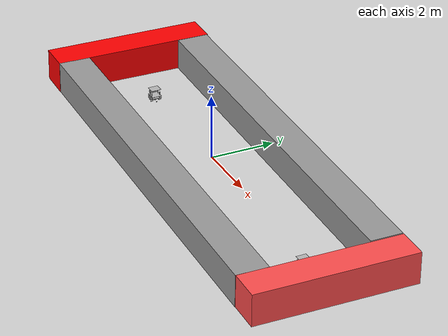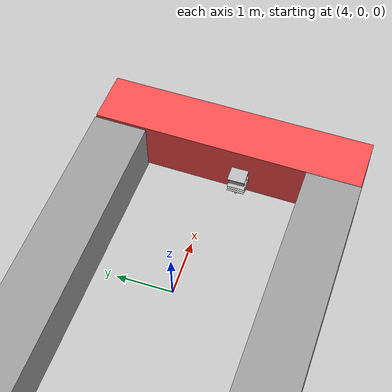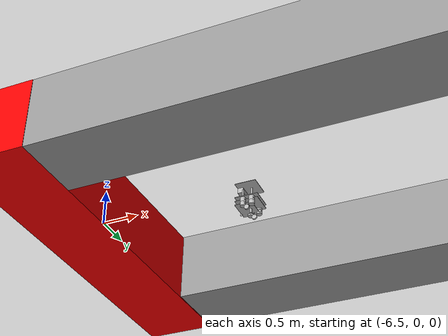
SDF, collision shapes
<?xml version='1.0'?>
<sdf version='1.6'>
  <model name='3302_final_map'>
    <link name='link_0'>
      <inertial>
        <mass>13.0236</mass>
        <inertia>
          <ixx>2.17059</ixx>
          <ixy>0</ixy>
          <ixz>0</ixz>
          <iyy>185.166</iyy>
          <iyz>0</iyz>
          <izz>185.166</izz>
        </inertia>
        <pose frame=''>0 0 0 0 -0 0</pose>
      </inertial>
      <pose frame=''>0.197611 -1.88933 0.105433 -0 0.01757 -0.026215</pose>
      <visual name='visual'>
        <pose frame=''>0 0 0 0 -0 0</pose>
        <geometry>
          <box>
            <size>13.0236 1 1</size>
          </box>
        </geometry>
        <material>
          <lighting>1</lighting>
          <script>
            <uri>file://media/materials/scripts/gazebo.material</uri>
            <name>Gazebo/Grey</name>
          </script>
        </material>
        <transparency>0</transparency>
        <cast_shadows>1</cast_shadows>
      </visual>
      <collision name='collision'>
        <laser_retro>0</laser_retro>
        <max_contacts>10</max_contacts>
        <pose frame=''>0 0 0 0 -0 0</pose>
        <geometry>
          <box>
            <size>13.0236 1 1</size>
          </box>
        </geometry>
        <surface>
          <friction>
            <ode>
              <mu>1</mu>
              <mu2>1</mu2>
              <fdir1>0 0 0</fdir1>
              <slip1>0</slip1>
              <slip2>0</slip2>
            </ode>
            <torsional>
              <coefficient>1</coefficient>
              <patch_radius>0</patch_radius>
              <surface_radius>0</surface_radius>
              <use_patch_radius>1</use_patch_radius>
              <ode>
                <slip>0</slip>
              </ode>
            </torsional>
          </friction>
          <bounce>
            <restitution_coefficient>0</restitution_coefficient>
            <threshold>1e+06</threshold>
          </bounce>
          <contact>
            <collide_without_contact>0</collide_without_contact>
            <collide_without_contact_bitmask>1</collide_without_contact_bitmask>
            <collide_bitmask>1</collide_bitmask>
            <ode>
              <soft_cfm>0</soft_cfm>
              <soft_erp>0.2</soft_erp>
              <kp>1e+13</kp>
              <kd>1</kd>
              <max_vel>0.01</max_vel>
              <min_depth>0</min_depth>
            </ode>
            <bullet>
              <split_impulse>1</split_impulse>
              <split_impulse_penetration_threshold>-0.01</split_impulse_penetration_threshold>
              <soft_cfm>0</soft_cfm>
              <soft_erp>0.2</soft_erp>
              <kp>1e+13</kp>
              <kd>1</kd>
            </bullet>
          </contact>
        </surface>
      </collision>
    </link>
    <link name='link_1'>
      <inertial>
        <mass>12.9636</mass>
        <inertia>
          <ixx>2.1606</ixx>
          <ixy>0</ixy>
          <ixz>0</ixz>
          <iyy>182.632</iyy>
          <iyz>0</iyz>
          <izz>182.632</izz>
        </inertia>
        <pose frame=''>0 0 0 0 -0 0</pose>
      </inertial>
      <pose frame=''>0.292225 2.13143 0.105622 -0 0.01757 -0.026215</pose>
      <visual name='visual'>
        <pose frame=''>0 0 0 0 -0 0</pose>
        <geometry>
          <box>
            <size>12.9636 1 1</size>
          </box>
        </geometry>
        <material>
          <lighting>1</lighting>
          <script>
            <uri>file://media/materials/scripts/gazebo.material</uri>
            <name>Gazebo/Grey</name>
          </script>
        </material>
        <transparency>0</transparency>
        <cast_shadows>1</cast_shadows>
      </visual>
      <collision name='collision'>
        <laser_retro>0</laser_retro>
        <max_contacts>10</max_contacts>
        <pose frame=''>0 0 0 0 -0 0</pose>
        <geometry>
          <box>
            <size>12.9636 1 1</size>
          </box>
        </geometry>
        <surface>
          <friction>
            <ode>
              <mu>1</mu>
              <mu2>1</mu2>
              <fdir1>0 0 0</fdir1>
              <slip1>0</slip1>
              <slip2>0</slip2>
            </ode>
            <torsional>
              <coefficient>1</coefficient>
              <patch_radius>0</patch_radius>
              <surface_radius>0</surface_radius>
              <use_patch_radius>1</use_patch_radius>
              <ode>
                <slip>0</slip>
              </ode>
            </torsional>
          </friction>
          <bounce>
            <restitution_coefficient>0</restitution_coefficient>
            <threshold>1e+06</threshold>
          </bounce>
          <contact>
            <collide_without_contact>0</collide_without_contact>
            <collide_without_contact_bitmask>1</collide_without_contact_bitmask>
            <collide_bitmask>1</collide_bitmask>
            <ode>
              <soft_cfm>0</soft_cfm>
              <soft_erp>0.2</soft_erp>
              <kp>1e+13</kp>
              <kd>1</kd>
              <max_vel>0.01</max_vel>
              <min_depth>0</min_depth>
            </ode>
            <bullet>
              <split_impulse>1</split_impulse>
              <split_impulse_penetration_threshold>-0.01</split_impulse_penetration_threshold>
              <soft_cfm>0</soft_cfm>
              <soft_erp>0.2</soft_erp>
              <kp>1e+13</kp>
              <kd>1</kd>
            </bullet>
          </contact>
        </surface>
      </collision>
    </link>
    <link name='link_2'>
      <inertial>
        <mass>5.01006</mass>
        <inertia>
          <ixx>10.8972</ixx>
          <ixy>0</ixy>
          <ixz>0</ixz>
          <iyy>0.835011</iyy>
          <iyz>0</iyz>
          <izz>10.8972</izz>
        </inertia>
        <pose frame=''>0 0 0 0 -0 0</pose>
      </inertial>
      <pose frame=''>7.26195 -0.059075 -0.017815 -0 0.01757 -0.026215</pose>
      <gravity>1</gravity>
      <self_collide>0</self_collide>
      <kinematic>0</kinematic>
      <enable_wind>0</enable_wind>
      <visual name='visual'>
        <pose frame=''>0 0 0 0 -0 0</pose>
        <geometry>
          <box>
            <size>1 5.01006 1</size>
          </box>
        </geometry>
        <material>
          <lighting>1</lighting>
          <script>
            <uri>file://media/materials/scripts/gazebo.material</uri>
            <name>Gazebo/Grey</name>
          </script>
          <shader type='vertex'>
            <normal_map>__default__</normal_map>
          </shader>
          <ambient>1 0.3 0.3 1</ambient>
          <diffuse>0.7 0.7 0.7 1</diffuse>
          <specular>0.01 0.01 0.01 1</specular>
          <emissive>0 0 0 1</emissive>
        </material>
        <transparency>0</transparency>
        <cast_shadows>1</cast_shadows>
      </visual>
      <collision name='collision'>
        <laser_retro>0</laser_retro>
        <max_contacts>10</max_contacts>
        <pose frame=''>0 0 0 0 -0 0</pose>
        <geometry>
          <box>
            <size>1 5.01006 1</size>
          </box>
        </geometry>
        <surface>
          <friction>
            <ode>
              <mu>1</mu>
              <mu2>1</mu2>
              <fdir1>0 0 0</fdir1>
              <slip1>0</slip1>
              <slip2>0</slip2>
            </ode>
            <torsional>
              <coefficient>1</coefficient>
              <patch_radius>0</patch_radius>
              <surface_radius>0</surface_radius>
              <use_patch_radius>1</use_patch_radius>
              <ode>
                <slip>0</slip>
              </ode>
            </torsional>
          </friction>
          <bounce>
            <restitution_coefficient>0</restitution_coefficient>
            <threshold>1e+06</threshold>
          </bounce>
          <contact>
            <collide_without_contact>0</collide_without_contact>
            <collide_without_contact_bitmask>1</collide_without_contact_bitmask>
            <collide_bitmask>1</collide_bitmask>
            <ode>
              <soft_cfm>0</soft_cfm>
              <soft_erp>0.2</soft_erp>
              <kp>1e+13</kp>
              <kd>1</kd>
              <max_vel>0.01</max_vel>
              <min_depth>0</min_depth>
            </ode>
            <bullet>
              <split_impulse>1</split_impulse>
              <split_impulse_penetration_threshold>-0.01</split_impulse_penetration_threshold>
              <soft_cfm>0</soft_cfm>
              <soft_erp>0.2</soft_erp>
              <kp>1e+13</kp>
              <kd>1</kd>
            </bullet>
          </contact>
        </surface>
      </collision>
    </link>
    <link name='link_3'>
      <inertial>
        <mass>5.06148</mass>
        <inertia>
          <ixx>11.2274</ixx>
          <ixy>0</ixy>
          <ixz>0</ixz>
          <iyy>0.84358</iyy>
          <iyz>0</iyz>
          <izz>11.2274</izz>
        </inertia>
        <pose frame=''>0 0 0 0 -0 0</pose>
      </inertial>
      <pose frame=''>-6.74889 0.31882 0.228471 -0 0.01757 -0.026215</pose>
      <gravity>1</gravity>
      <self_collide>0</self_collide>
      <kinematic>0</kinematic>
      <enable_wind>0</enable_wind>
      <visual name='visual'>
        <pose frame=''>0 0 0 0 -0 0</pose>
        <geometry>
          <box>
            <size>1 5.06147 1</size>
          </box>
        </geometry>
        <material>
          <lighting>1</lighting>
          <script>
            <uri>file://media/materials/scripts/gazebo.material</uri>
            <name>Gazebo/Grey</name>
          </script>
          <ambient>1 0 0 0</ambient>
          <shader type='vertex'>
            <normal_map>__default__</normal_map>
          </shader>
          <diffuse>0.7 0.7 0.7 1</diffuse>
          <specular>0.01 0.01 0.01 1</specular>
          <emissive>0 0 0 1</emissive>
        </material>
        <transparency>0</transparency>
        <cast_shadows>1</cast_shadows>
      </visual>
      <collision name='collision'>
        <laser_retro>0</laser_retro>
        <max_contacts>10</max_contacts>
        <pose frame=''>0 0 0 0 -0 0</pose>
        <geometry>
          <box>
            <size>1 5.06147 1</size>
          </box>
        </geometry>
        <surface>
          <friction>
            <ode>
              <mu>1</mu>
              <mu2>1</mu2>
              <fdir1>0 0 0</fdir1>
              <slip1>0</slip1>
              <slip2>0</slip2>
            </ode>
            <torsional>
              <coefficient>1</coefficient>
              <patch_radius>0</patch_radius>
              <surface_radius>0</surface_radius>
              <use_patch_radius>1</use_patch_radius>
              <ode>
                <slip>0</slip>
              </ode>
            </torsional>
          </friction>
          <bounce>
            <restitution_coefficient>0</restitution_coefficient>
            <threshold>1e+06</threshold>
          </bounce>
          <contact>
            <collide_without_contact>0</collide_without_contact>
            <collide_without_contact_bitmask>1</collide_without_contact_bitmask>
            <collide_bitmask>1</collide_bitmask>
            <ode>
              <soft_cfm>0</soft_cfm>
              <soft_erp>0.2</soft_erp>
              <kp>1e+13</kp>
              <kd>1</kd>
              <max_vel>0.01</max_vel>
              <min_depth>0</min_depth>
            </ode>
            <bullet>
              <split_impulse>1</split_impulse>
              <split_impulse_penetration_threshold>-0.01</split_impulse_penetration_threshold>
              <soft_cfm>0</soft_cfm>
              <soft_erp>0.2</soft_erp>
              <kp>1e+13</kp>
              <kd>1</kd>
            </bullet>
          </contact>
        </surface>
      </collision>
    </link>
    <model name='turtlebot'>
      <link name='rack'>
        <inertial>
          <pose frame=''>0.001453 -0.000453 0.029787 0 -0 0</pose>
          <inertia>
            <ixx>0.05864</ixx>
            <ixy>0.000124</ixy>
            <ixz>0.000615</ixz>
            <iyy>0.058786</iyy>
            <iyz>1.4e-05</iyz>
            <izz>1.53244</izz>
          </inertia>
          <mass>2.234</mass>
        </inertial>
        <collision name='plate_0_collision'>
          <pose frame=''>-0.04334 0 0.084757 0 -0 0</pose>
          <geometry>
            <box>
              <size>0.233502 0.314845 0.006401</size>
            </box>
          </geometry>
        </collision>
        <visual name='plate_0_visual'>
          <pose frame=''>-0.04334 0 0.084757 0 -0 0</pose>
          <geometry>
            <mesh>
              <uri>model://turtlebot/meshes/plate_0_logo.dae</uri>
            </mesh>
          </geometry>
        </visual>
        <collision name='plate_1_collision'>
          <pose frame=''>-0.00266 0 0.141907 0 -0 0</pose>
          <geometry>
            <box>
              <size>0.314856 0.314856 0.006401</size>
            </box>
          </geometry>
        </collision>
        <visual name='plate_1_visual'>
          <pose frame=''>-0.00266 0 0.141907 0 -0 0</pose>
          <geometry>
            <mesh>
              <uri>model://turtlebot/meshes/plate_1_logo.dae</uri>
            </mesh>
          </geometry>
        </visual>
        <collision name='plate_2_collision'>
          <pose frame=''>-0.00266 0 0.199108 0 -0 0</pose>
          <geometry>
            <box>
              <size>0.314856 0.314856 0.006401</size>
            </box>
          </geometry>
        </collision>
        <visual name='plate_2_visual'>
          <pose frame=''>-0.00266 0 0.199108 0 -0 0</pose>
          <geometry>
            <mesh>
              <uri>model://turtlebot/meshes/plate_1_logo.dae</uri>
            </mesh>
          </geometry>
        </visual>
        <collision name='plate_3_collision'>
          <pose frame=''>-0.01582 0 0.405457 0 -0 0</pose>
          <geometry>
            <box>
              <size>0.288 0.315 0.006401</size>
            </box>
          </geometry>
        </collision>
        <visual name='plate_3_visual'>
          <pose frame=''>-0.01582 0 0.405457 0 -0 0</pose>
          <geometry>
            <mesh>
              <uri>model://turtlebot/meshes/plate_2_logo.dae</uri>
            </mesh>
          </geometry>
        </visual>
        <collision name='spacer_0_collision'>
          <pose frame=''>-0.00254 0.111468 0.079992 0 -0 0</pose>
          <geometry>
            <cylinder>
              <radius>0.0127</radius>
              <length>0.003175</length>
            </cylinder>
          </geometry>
        </collision>
        <visual name='spacer_0_visual'>
          <pose frame=''>-0.00254 0.111468 0.079992 0 -0 0</pose>
          <geometry>
            <mesh>
              <uri>model://turtlebot/meshes/68-02403-125_Spacer.dae</uri>
            </mesh>
          </geometry>
        </visual>
        <collision name='spacer_1_collision'>
          <pose frame=''>-0.00254 -0.111468 0.079992 0 -0 0</pose>
          <geometry>
            <cylinder>
              <radius>0.0127</radius>
              <length>0.003175</length>
            </cylinder>
          </geometry>
        </collision>
        <visual name='spacer_1_visual'>
          <pose frame=''>-0.00254 -0.111468 0.079992 0 -0 0</pose>
          <geometry>
            <mesh>
              <uri>model://turtlebot/meshes/68-02403-125_Spacer.dae</uri>
            </mesh>
          </geometry>
        </visual>
        <collision name='spacer_2_collision'>
          <pose frame=''>-0.07239 -0.111468 0.079992 0 -0 0</pose>
          <geometry>
            <cylinder>
              <radius>0.0127</radius>
              <length>0.003175</length>
            </cylinder>
          </geometry>
        </collision>
        <visual name='spacer_2_visual'>
          <pose frame=''>-0.07239 -0.111468 0.079992 0 -0 0</pose>
          <geometry>
            <mesh>
              <uri>model://turtlebot/meshes/68-02403-125_Spacer.dae</uri>
            </mesh>
          </geometry>
        </visual>
        <collision name='spacer_3_collision'>
          <pose frame=''>-0.07239 0.111468 0.079992 0 -0 0</pose>
          <geometry>
            <cylinder>
              <radius>0.0127</radius>
              <length>0.003175</length>
            </cylinder>
          </geometry>
        </collision>
        <visual name='spacer_3_visual'>
          <pose frame=''>-0.07239 0.111468 0.079992 0 -0 0</pose>
          <geometry>
            <mesh>
              <uri>model://turtlebot/meshes/68-02403-125_Spacer.dae</uri>
            </mesh>
          </geometry>
        </visual>
        <collision name='standoff_2in_0_collision'>
          <pose frame=''>0.06764 0.13142 0.08798 0 -0 0</pose>
          <geometry>
            <cylinder>
              <radius>0.0381</radius>
              <length>0.0635</length>
            </cylinder>
          </geometry>
        </collision>
        <visual name='standoff_2in_0_visual'>
          <pose frame=''>0.06764 0.13142 0.08798 0 -0 0</pose>
          <geometry>
            <mesh>
              <uri>model://turtlebot/meshes/68-04552-2000-RA_Turtlebot_M-F_Standoff.dae</uri>
            </mesh>
          </geometry>
        </visual>
        <collision name='standoff_2in_1_collision'>
          <pose frame=''>0.06764 -0.13142 0.08798 0 -0 0</pose>
          <geometry>
            <cylinder>
              <radius>0.0381</radius>
              <length>0.0635</length>
            </cylinder>
          </geometry>
        </collision>
        <visual name='standoff_2in_1_visual'>
          <pose frame=''>0.06764 -0.13142 0.08798 0 -0 0</pose>
          <geometry>
            <mesh>
              <uri>model://turtlebot/meshes/68-04552-2000-RA_Turtlebot_M-F_Standoff.dae</uri>
            </mesh>
          </geometry>
        </visual>
        <collision name='standoff_2in_2_collision'>
          <pose frame=''>-0.052832 -0.13142 0.08798 0 -0 0</pose>
          <geometry>
            <cylinder>
              <radius>0.0381</radius>
              <length>0.0635</length>
            </cylinder>
          </geometry>
        </collision>
        <visual name='standoff_2in_2_visual'>
          <pose frame=''>-0.052832 -0.13142 0.08798 0 -0 0</pose>
          <geometry>
            <mesh>
              <uri>model://turtlebot/meshes/68-04552-2000-RA_Turtlebot_M-F_Standoff.dae</uri>
            </mesh>
          </geometry>
        </visual>
        <collision name='standoff_2in_3_collision'>
          <pose frame=''>-0.052832 0.13142 0.08798 0 -0 0</pose>
          <geometry>
            <cylinder>
              <radius>0.0381</radius>
              <length>0.0635</length>
            </cylinder>
          </geometry>
        </collision>
        <visual name='standoff_2in_3_visual'>
          <pose frame=''>-0.052832 0.13142 0.08798 0 -0 0</pose>
          <geometry>
            <mesh>
              <uri>model://turtlebot/meshes/68-04552-2000-RA_Turtlebot_M-F_Standoff.dae</uri>
            </mesh>
          </geometry>
        </visual>
        <collision name='standoff_2in_4_collision'>
          <pose frame=''>0.06764 0.13142 0.14513 0 -0 0</pose>
          <geometry>
            <cylinder>
              <radius>0.0381</radius>
              <length>0.0635</length>
            </cylinder>
          </geometry>
        </collision>
        <visual name='standoff_2in_4_visual'>
          <pose frame=''>0.06764 0.13142 0.14513 0 -0 0</pose>
          <geometry>
            <mesh>
              <uri>model://turtlebot/meshes/68-04552-2000-RA_Turtlebot_M-F_Standoff.dae</uri>
            </mesh>
          </geometry>
        </visual>
        <collision name='standoff_2in_5_collision'>
          <pose frame=''>0.06764 -0.13142 0.14513 0 -0 0</pose>
          <geometry>
            <cylinder>
              <radius>0.0381</radius>
              <length>0.0635</length>
            </cylinder>
          </geometry>
        </collision>
        <visual name='standoff_2in_5_visual'>
          <pose frame=''>0.06764 -0.13142 0.14513 0 -0 0</pose>
          <geometry>
            <mesh>
              <uri>model://turtlebot/meshes/68-04552-2000-RA_Turtlebot_M-F_Standoff.dae</uri>
            </mesh>
          </geometry>
        </visual>
        <collision name='standoff_2in_6_collision'>
          <pose frame=''>-0.052832 -0.13142 0.14513 0 -0 0</pose>
          <geometry>
            <cylinder>
              <radius>0.0381</radius>
              <length>0.0635</length>
            </cylinder>
          </geometry>
        </collision>
        <visual name='standoff_2in_6_visual'>
          <pose frame=''>-0.052832 -0.13142 0.14513 0 -0 0</pose>
          <geometry>
            <mesh>
              <uri>model://turtlebot/meshes/68-04552-2000-RA_Turtlebot_M-F_Standoff.dae</uri>
            </mesh>
          </geometry>
        </visual>
        <collision name='standoff_2in_7_collision'>
          <pose frame=''>-0.052832 0.13142 0.14513 0 -0 0</pose>
          <geometry>
            <cylinder>
              <radius>0.0381</radius>
              <length>0.0635</length>
            </cylinder>
          </geometry>
        </collision>
        <visual name='standoff_2in_7_visual'>
          <pose frame=''>-0.052832 0.13142 0.14513 0 -0 0</pose>
          <geometry>
            <mesh>
              <uri>model://turtlebot/meshes/68-04552-2000-RA_Turtlebot_M-F_Standoff.dae</uri>
            </mesh>
          </geometry>
        </visual>
        <collision name='standoff_8in_0_collision'>
          <pose frame=''>0.06764 0.13142 0.20228 0 -0 0</pose>
          <geometry>
            <cylinder>
              <radius>0.011113</radius>
              <length>0.2032</length>
            </cylinder>
          </geometry>
        </collision>
        <visual name='standoff_8in_0_visual'>
          <pose frame=''>0.06764 0.13142 0.20228 0 -0 0</pose>
          <geometry>
            <mesh>
              <uri>model://turtlebot/meshes/68-02421-8000-RA_Turtlebot_F-F_Standoff.dae</uri>
            </mesh>
          </geometry>
        </visual>
        <collision name='standoff_8in_1_collision'>
          <pose frame=''>0.06764 -0.13142 0.20228 0 -0 0</pose>
          <geometry>
            <cylinder>
              <radius>0.011113</radius>
              <length>0.2032</length>
            </cylinder>
          </geometry>
        </collision>
        <visual name='standoff_8in_1_visual'>
          <pose frame=''>0.06764 -0.13142 0.20228 0 -0 0</pose>
          <geometry>
            <mesh>
              <uri>model://turtlebot/meshes/68-02421-8000-RA_Turtlebot_F-F_Standoff.dae</uri>
            </mesh>
          </geometry>
        </visual>
        <collision name='standoff_8in_2_collision'>
          <pose frame=''>-0.052832 -0.13142 0.20228 0 -0 0</pose>
          <geometry>
            <cylinder>
              <radius>0.011113</radius>
              <length>0.2032</length>
            </cylinder>
          </geometry>
        </collision>
        <visual name='standoff_8in_2_visual'>
          <pose frame=''>-0.052832 -0.13142 0.20228 0 -0 0</pose>
          <geometry>
            <mesh>
              <uri>model://turtlebot/meshes/68-02421-8000-RA_Turtlebot_F-F_Standoff.dae</uri>
            </mesh>
          </geometry>
        </visual>
        <collision name='standoff_8in_3_collision'>
          <pose frame=''>-0.052832 0.13142 0.20228 0 -0 0</pose>
          <geometry>
            <cylinder>
              <radius>0.011113</radius>
              <length>0.2032</length>
            </cylinder>
          </geometry>
        </collision>
        <visual name='standoff_8in_3_visual'>
          <pose frame=''>-0.052832 0.13142 0.20228 0 -0 0</pose>
          <geometry>
            <mesh>
              <uri>model://turtlebot/meshes/68-02421-8000-RA_Turtlebot_F-F_Standoff.dae</uri>
            </mesh>
          </geometry>
        </visual>
        <collision name='standoff_kinect_0_collision'>
          <pose frame=''>-0.105098 0.098 0.202308 0 -0 0</pose>
          <geometry>
            <cylinder>
              <radius>0.001111</radius>
              <length>0.008585</length>
            </cylinder>
          </geometry>
        </collision>
        <visual name='standoff_kinect_0_visual'>
          <pose frame=''>-0.105098 0.098 0.202308 0 -0 0</pose>
          <geometry>
            <mesh>
              <uri>model://turtlebot/meshes/68-04556-RA_Kinect_Standoff_Assy.dae</uri>
            </mesh>
          </geometry>
        </visual>
        <collision name='standoff_kinect_1_collision'>
          <pose frame=''>-0.105098 -0.098 0.202308 0 -0 0</pose>
          <geometry>
            <cylinder>
              <radius>0.001111</radius>
              <length>0.008585</length>
            </cylinder>
          </geometry>
        </collision>
        <visual name='standoff_kinect_1_visual'>
          <pose frame=''>-0.105098 -0.098 0.202308 0 -0 0</pose>
          <geometry>
            <mesh>
              <uri>model://turtlebot/meshes/68-04556-RA_Kinect_Standoff_Assy.dae</uri>
            </mesh>
          </geometry>
        </visual>
        <sensor name='laser' type='ray'>
          <pose frame=''>-0.065 0 0.092 0 -0 0</pose>
          <ray>
            <scan>
              <horizontal>
                <samples>180</samples>
                <resolution>1</resolution>
                <min_angle>-2.26893</min_angle>
                <max_angle>2.26893</max_angle>
              </horizontal>
            </scan>
            <range>
              <min>0.08</min>
              <max>10</max>
              <resolution>0.01</resolution>
            </range>
          </ray>
          <update_rate>20</update_rate>
        </sensor>
      </link>
      <link name='create::base'>
        <inertial>
          <pose frame=''>0.001453 -0.000453 0.029787 0 -0 0</pose>
          <inertia>
            <ixx>0.05864</ixx>
            <ixy>0.000124</ixy>
            <ixz>0.000615</ixz>
            <iyy>0.058786</iyy>
            <iyz>1.4e-05</iyz>
            <izz>1.53244</izz>
          </inertia>
          <mass>2.234</mass>
        </inertial>
        <collision name='base_collision'>
          <pose frame=''>0 0 0.0478 0 -0 0</pose>
          <geometry>
            <cylinder>
              <radius>0.016495</radius>
              <length>0.061163</length>
            </cylinder>
          </geometry>
        </collision>
        <visual name='base_visual'>
          <pose frame=''>0 0 0.0478 0 -0 0</pose>
          <geometry>
            <mesh>
              <uri>model://create/meshes/create_body.dae</uri>
            </mesh>
          </geometry>
        </visual>
        <collision name='front_wheel_collision'>
          <pose frame=''>0.13 0 0.017 -0 1.5707 1.5707</pose>
          <geometry>
            <sphere>
              <radius>0.018</radius>
            </sphere>
          </geometry>
          <surface>
            <friction>
              <ode>
                <mu>0</mu>
                <mu2>0</mu2>
                <fdir1>0 0 0</fdir1>
                <slip1>0</slip1>
                <slip2>0</slip2>
              </ode>
            </friction>
          </surface>
        </collision>
        <visual name='front_wheel_visual'>
          <pose frame=''>0.13 0 0.017 -0 1.5707 1.5707</pose>
          <geometry>
            <sphere>
              <radius>0.009</radius>
            </sphere>
          </geometry>
        </visual>
        <collision name='rear_wheel_collision'>
          <pose frame=''>-0.13 0 0.017 -0 1.5707 1.5707</pose>
          <geometry>
            <sphere>
              <radius>0.015</radius>
            </sphere>
          </geometry>
          <surface>
            <friction>
              <ode>
                <mu>0</mu>
                <mu2>0</mu2>
                <fdir1>0 0 0</fdir1>
                <slip1>0</slip1>
                <slip2>0</slip2>
              </ode>
            </friction>
          </surface>
        </collision>
        <visual name='rear_wheel_visual'>
          <pose frame=''>-0.13 0 0.017 -0 1.5707 1.5707</pose>
          <geometry>
            <sphere>
              <radius>0.0075</radius>
            </sphere>
          </geometry>
        </visual>
        <sensor name='left_cliff_sensor' type='ray'>
          <pose frame=''>0.07 0.14 0.027 0 1.57079 0</pose>
          <ray>
            <scan>
              <horizontal>
                <samples>1</samples>
                <resolution>1</resolution>
                <min_angle>0</min_angle>
                <max_angle>0</max_angle>
              </horizontal>
            </scan>
            <range>
              <min>0.01</min>
              <max>0.04</max>
              <resolution>0.1</resolution>
            </range>
          </ray>
        </sensor>
        <sensor name='leftfront_cliff_sensor' type='ray'>
          <pose frame=''>0.15 0.04 0.027 0 1.57079 0</pose>
          <ray>
            <scan>
              <horizontal>
                <samples>1</samples>
                <resolution>1</resolution>
                <min_angle>0</min_angle>
                <max_angle>0</max_angle>
              </horizontal>
            </scan>
            <range>
              <min>0.01</min>
              <max>0.04</max>
              <resolution>0.1</resolution>
            </range>
          </ray>
        </sensor>
        <sensor name='right_cliff_sensor' type='ray'>
          <pose frame=''>0.07 -0.14 0.027 0 1.57079 0</pose>
          <ray>
            <scan>
              <horizontal>
                <samples>1</samples>
                <resolution>1</resolution>
                <min_angle>0</min_angle>
                <max_angle>0</max_angle>
              </horizontal>
            </scan>
            <range>
              <min>0.01</min>
              <max>0.04</max>
              <resolution>0.1</resolution>
            </range>
          </ray>
        </sensor>
        <sensor name='rightfront_cliff_sensor' type='ray'>
          <pose frame=''>0.15 -0.04 0.027 0 1.57079 0</pose>
          <ray>
            <scan>
              <horizontal>
                <samples>1</samples>
                <resolution>1</resolution>
                <min_angle>0</min_angle>
                <max_angle>0</max_angle>
              </horizontal>
            </scan>
            <range>
              <min>0.01</min>
              <max>0.04</max>
              <resolution>0.1</resolution>
            </range>
          </ray>
        </sensor>
        <sensor name='wall_sensor' type='ray'>
          <pose frame=''>0.09 -0.12 0.059 0 0 -1</pose>
          <ray>
            <scan>
              <horizontal>
                <samples>1</samples>
                <resolution>1</resolution>
                <min_angle>0</min_angle>
                <max_angle>0</max_angle>
              </horizontal>
            </scan>
            <range>
              <min>0.016</min>
              <max>0.04</max>
              <resolution>0.1</resolution>
            </range>
          </ray>
        </sensor>
        <pose frame=''>0 0 0 0 -0 0</pose>
      </link>
      <link name='create::left_wheel'>
        <pose frame=''>0 0.13 0.032 0 -0 0</pose>
        <inertial>
          <inertia>
            <ixx>0.001</ixx>
            <ixy>0</ixy>
            <ixz>0</ixz>
            <iyy>0.001</iyy>
            <iyz>0</iyz>
            <izz>0.001</izz>
          </inertia>
          <mass>0.01</mass>
        </inertial>
        <collision name='collision'>
          <pose frame=''>0 0 0 -0 1.5707 1.5707</pose>
          <geometry>
            <cylinder>
              <radius>0.033</radius>
              <length>0.023</length>
            </cylinder>
          </geometry>
          <surface>
            <friction>
              <ode>
                <mu>10</mu>
                <mu2>10</mu2>
                <fdir1>0 0 0</fdir1>
                <slip1>0</slip1>
                <slip2>0</slip2>
              </ode>
            </friction>
          </surface>
        </collision>
        <visual name='visual'>
          <pose frame=''>0 0 0 -0 1.5707 1.5707</pose>
          <geometry>
            <cylinder>
              <radius>0.033</radius>
              <length>0.023</length>
            </cylinder>
          </geometry>
        </visual>
      </link>
      <link name='create::right_wheel'>
        <pose frame=''>0 -0.13 0.032 0 -0 0</pose>
        <inertial>
          <inertia>
            <ixx>0.001</ixx>
            <ixy>0</ixy>
            <ixz>0</ixz>
            <iyy>0.001</iyy>
            <iyz>0</iyz>
            <izz>0.001</izz>
          </inertia>
          <mass>0.01</mass>
        </inertial>
        <collision name='collision'>
          <pose frame=''>0 0 0 -0 1.5707 1.5707</pose>
          <geometry>
            <cylinder>
              <radius>0.033</radius>
              <length>0.023</length>
            </cylinder>
          </geometry>
          <surface>
            <friction>
              <ode>
                <mu>10</mu>
                <mu2>10</mu2>
                <fdir1>0 0 0</fdir1>
                <slip1>0</slip1>
                <slip2>0</slip2>
              </ode>
            </friction>
          </surface>
        </collision>
        <visual name='visual'>
          <pose frame=''>0 0 0 -0 1.5707 1.5707</pose>
          <geometry>
            <cylinder>
              <radius>0.033</radius>
              <length>0.023</length>
            </cylinder>
          </geometry>
        </visual>
      </link>
      <joint name='create::left_wheel' type='revolute'>
        <parent>create::base</parent>
        <child>create::left_wheel</child>
        <axis>
          <xyz>0 1 0</xyz>
          <use_parent_model_frame>1</use_parent_model_frame>
          <limit>
            <lower>-1e+16</lower>
            <upper>1e+16</upper>
          </limit>
        </axis>
      </joint>
      <joint name='create::right_wheel' type='revolute'>
        <parent>create::base</parent>
        <child>create::right_wheel</child>
        <axis>
          <xyz>0 1 0</xyz>
          <use_parent_model_frame>1</use_parent_model_frame>
          <limit>
            <lower>-1e+16</lower>
            <upper>1e+16</upper>
          </limit>
        </axis>
      </joint>
      <link name='kinect::link'>
        <inertial>
          <mass>0.1</mass>
        </inertial>
        <collision name='collision'>
          <geometry>
            <box>
              <size>0.073 0.276 0.072</size>
            </box>
          </geometry>
        </collision>
        <visual name='visual'>
          <geometry>
            <mesh>
              <uri>model://kinect/meshes/kinect.dae</uri>
            </mesh>
          </geometry>
        </visual>
        <sensor name='camera' type='depth'>
          <update_rate>20</update_rate>
          <camera name='__default__'>
            <horizontal_fov>1.0472</horizontal_fov>
            <image>
              <width>640</width>
              <height>480</height>
              <format>R8G8B8</format>
            </image>
            <clip>
              <near>0.05</near>
              <far>3</far>
            </clip>
          </camera>
        </sensor>
        <pose frame=''>-0.087098 0 0.303857 0 -0 0</pose>
      </link>
      <joint name='create_rack' type='revolute'>
        <parent>create::base</parent>
        <child>rack</child>
        <axis>
          <xyz>0 0 1</xyz>
          <limit>
            <lower>0</lower>
            <upper>0</upper>
          </limit>
          <use_parent_model_frame>1</use_parent_model_frame>
        </axis>
      </joint>
      <joint name='kinect_rack' type='revolute'>
        <parent>kinect::link</parent>
        <child>rack</child>
        <axis>
          <xyz>0 0 1</xyz>
          <limit>
            <lower>0</lower>
            <upper>0</upper>
          </limit>
          <use_parent_model_frame>1</use_parent_model_frame>
        </axis>
      </joint>
      <pose frame=''>6.45808 -0.398926 -0.113625 0 -0 0</pose>
    </model>
    <model name='turtlebot_0'>
      <link name='rack'>
        <inertial>
          <pose frame=''>0.001453 -0.000453 0.029787 0 -0 0</pose>
          <inertia>
            <ixx>0.05864</ixx>
            <ixy>0.000124</ixy>
            <ixz>0.000615</ixz>
            <iyy>0.058786</iyy>
            <iyz>1.4e-05</iyz>
            <izz>1.53244</izz>
          </inertia>
          <mass>2.234</mass>
        </inertial>
        <collision name='plate_0_collision'>
          <pose frame=''>-0.04334 0 0.084757 0 -0 0</pose>
          <geometry>
            <box>
              <size>0.233502 0.314845 0.006401</size>
            </box>
          </geometry>
        </collision>
        <visual name='plate_0_visual'>
          <pose frame=''>-0.04334 0 0.084757 0 -0 0</pose>
          <geometry>
            <mesh>
              <uri>model://turtlebot/meshes/plate_0_logo.dae</uri>
            </mesh>
          </geometry>
        </visual>
        <collision name='plate_1_collision'>
          <pose frame=''>-0.00266 0 0.141907 0 -0 0</pose>
          <geometry>
            <box>
              <size>0.314856 0.314856 0.006401</size>
            </box>
          </geometry>
        </collision>
        <visual name='plate_1_visual'>
          <pose frame=''>-0.00266 0 0.141907 0 -0 0</pose>
          <geometry>
            <mesh>
              <uri>model://turtlebot/meshes/plate_1_logo.dae</uri>
            </mesh>
          </geometry>
        </visual>
        <collision name='plate_2_collision'>
          <pose frame=''>-0.00266 0 0.199108 0 -0 0</pose>
          <geometry>
            <box>
              <size>0.314856 0.314856 0.006401</size>
            </box>
          </geometry>
        </collision>
        <visual name='plate_2_visual'>
          <pose frame=''>-0.00266 0 0.199108 0 -0 0</pose>
          <geometry>
            <mesh>
              <uri>model://turtlebot/meshes/plate_1_logo.dae</uri>
            </mesh>
          </geometry>
        </visual>
        <collision name='plate_3_collision'>
          <pose frame=''>-0.01582 0 0.405457 0 -0 0</pose>
          <geometry>
            <box>
              <size>0.288 0.315 0.006401</size>
            </box>
          </geometry>
        </collision>
        <visual name='plate_3_visual'>
          <pose frame=''>-0.01582 0 0.405457 0 -0 0</pose>
          <geometry>
            <mesh>
              <uri>model://turtlebot/meshes/plate_2_logo.dae</uri>
            </mesh>
          </geometry>
        </visual>
        <collision name='spacer_0_collision'>
          <pose frame=''>-0.00254 0.111468 0.079992 0 -0 0</pose>
          <geometry>
            <cylinder>
              <radius>0.0127</radius>
              <length>0.003175</length>
            </cylinder>
          </geometry>
        </collision>
        <visual name='spacer_0_visual'>
          <pose frame=''>-0.00254 0.111468 0.079992 0 -0 0</pose>
          <geometry>
            <mesh>
              <uri>model://turtlebot/meshes/68-02403-125_Spacer.dae</uri>
            </mesh>
          </geometry>
        </visual>
        <collision name='spacer_1_collision'>
          <pose frame=''>-0.00254 -0.111468 0.079992 0 -0 0</pose>
          <geometry>
            <cylinder>
              <radius>0.0127</radius>
              <length>0.003175</length>
            </cylinder>
          </geometry>
        </collision>
        <visual name='spacer_1_visual'>
          <pose frame=''>-0.00254 -0.111468 0.079992 0 -0 0</pose>
          <geometry>
            <mesh>
              <uri>model://turtlebot/meshes/68-02403-125_Spacer.dae</uri>
            </mesh>
          </geometry>
        </visual>
        <collision name='spacer_2_collision'>
          <pose frame=''>-0.07239 -0.111468 0.079992 0 -0 0</pose>
          <geometry>
            <cylinder>
              <radius>0.0127</radius>
              <length>0.003175</length>
            </cylinder>
          </geometry>
        </collision>
        <visual name='spacer_2_visual'>
          <pose frame=''>-0.07239 -0.111468 0.079992 0 -0 0</pose>
          <geometry>
            <mesh>
              <uri>model://turtlebot/meshes/68-02403-125_Spacer.dae</uri>
            </mesh>
          </geometry>
        </visual>
        <collision name='spacer_3_collision'>
          <pose frame=''>-0.07239 0.111468 0.079992 0 -0 0</pose>
          <geometry>
            <cylinder>
              <radius>0.0127</radius>
              <length>0.003175</length>
            </cylinder>
          </geometry>
        </collision>
        <visual name='spacer_3_visual'>
          <pose frame=''>-0.07239 0.111468 0.079992 0 -0 0</pose>
          <geometry>
            <mesh>
              <uri>model://turtlebot/meshes/68-02403-125_Spacer.dae</uri>
            </mesh>
          </geometry>
        </visual>
        <collision name='standoff_2in_0_collision'>
          <pose frame=''>0.06764 0.13142 0.08798 0 -0 0</pose>
          <geometry>
            <cylinder>
              <radius>0.0381</radius>
              <length>0.0635</length>
            </cylinder>
          </geometry>
        </collision>
        <visual name='standoff_2in_0_visual'>
          <pose frame=''>0.06764 0.13142 0.08798 0 -0 0</pose>
          <geometry>
            <mesh>
              <uri>model://turtlebot/meshes/68-04552-2000-RA_Turtlebot_M-F_Standoff.dae</uri>
            </mesh>
          </geometry>
        </visual>
        <collision name='standoff_2in_1_collision'>
          <pose frame=''>0.06764 -0.13142 0.08798 0 -0 0</pose>
          <geometry>
            <cylinder>
              <radius>0.0381</radius>
              <length>0.0635</length>
            </cylinder>
          </geometry>
        </collision>
        <visual name='standoff_2in_1_visual'>
          <pose frame=''>0.06764 -0.13142 0.08798 0 -0 0</pose>
          <geometry>
            <mesh>
              <uri>model://turtlebot/meshes/68-04552-2000-RA_Turtlebot_M-F_Standoff.dae</uri>
            </mesh>
          </geometry>
        </visual>
        <collision name='standoff_2in_2_collision'>
          <pose frame=''>-0.052832 -0.13142 0.08798 0 -0 0</pose>
          <geometry>
            <cylinder>
              <radius>0.0381</radius>
              <length>0.0635</length>
            </cylinder>
          </geometry>
        </collision>
        <visual name='standoff_2in_2_visual'>
          <pose frame=''>-0.052832 -0.13142 0.08798 0 -0 0</pose>
          <geometry>
            <mesh>
              <uri>model://turtlebot/meshes/68-04552-2000-RA_Turtlebot_M-F_Standoff.dae</uri>
            </mesh>
          </geometry>
        </visual>
        <collision name='standoff_2in_3_collision'>
          <pose frame=''>-0.052832 0.13142 0.08798 0 -0 0</pose>
          <geometry>
            <cylinder>
              <radius>0.0381</radius>
              <length>0.0635</length>
            </cylinder>
          </geometry>
        </collision>
        <visual name='standoff_2in_3_visual'>
          <pose frame=''>-0.052832 0.13142 0.08798 0 -0 0</pose>
          <geometry>
            <mesh>
              <uri>model://turtlebot/meshes/68-04552-2000-RA_Turtlebot_M-F_Standoff.dae</uri>
            </mesh>
          </geometry>
        </visual>
        <collision name='standoff_2in_4_collision'>
          <pose frame=''>0.06764 0.13142 0.14513 0 -0 0</pose>
          <geometry>
            <cylinder>
              <radius>0.0381</radius>
              <length>0.0635</length>
            </cylinder>
          </geometry>
        </collision>
        <visual name='standoff_2in_4_visual'>
          <pose frame=''>0.06764 0.13142 0.14513 0 -0 0</pose>
          <geometry>
            <mesh>
              <uri>model://turtlebot/meshes/68-04552-2000-RA_Turtlebot_M-F_Standoff.dae</uri>
            </mesh>
          </geometry>
        </visual>
        <collision name='standoff_2in_5_collision'>
          <pose frame=''>0.06764 -0.13142 0.14513 0 -0 0</pose>
          <geometry>
            <cylinder>
              <radius>0.0381</radius>
              <length>0.0635</length>
            </cylinder>
          </geometry>
        </collision>
        <visual name='standoff_2in_5_visual'>
          <pose frame=''>0.06764 -0.13142 0.14513 0 -0 0</pose>
          <geometry>
            <mesh>
              <uri>model://turtlebot/meshes/68-04552-2000-RA_Turtlebot_M-F_Standoff.dae</uri>
            </mesh>
          </geometry>
        </visual>
        <collision name='standoff_2in_6_collision'>
          <pose frame=''>-0.052832 -0.13142 0.14513 0 -0 0</pose>
          <geometry>
            <cylinder>
              <radius>0.0381</radius>
              <length>0.0635</length>
            </cylinder>
          </geometry>
        </collision>
        <visual name='standoff_2in_6_visual'>
          <pose frame=''>-0.052832 -0.13142 0.14513 0 -0 0</pose>
          <geometry>
            <mesh>
              <uri>model://turtlebot/meshes/68-04552-2000-RA_Turtlebot_M-F_Standoff.dae</uri>
            </mesh>
          </geometry>
        </visual>
        <collision name='standoff_2in_7_collision'>
          <pose frame=''>-0.052832 0.13142 0.14513 0 -0 0</pose>
          <geometry>
            <cylinder>
              <radius>0.0381</radius>
              <length>0.0635</length>
            </cylinder>
          </geometry>
        </collision>
        <visual name='standoff_2in_7_visual'>
          <pose frame=''>-0.052832 0.13142 0.14513 0 -0 0</pose>
          <geometry>
            <mesh>
              <uri>model://turtlebot/meshes/68-04552-2000-RA_Turtlebot_M-F_Standoff.dae</uri>
            </mesh>
          </geometry>
        </visual>
        <collision name='standoff_8in_0_collision'>
          <pose frame=''>0.06764 0.13142 0.20228 0 -0 0</pose>
          <geometry>
            <cylinder>
              <radius>0.011113</radius>
              <length>0.2032</length>
            </cylinder>
          </geometry>
        </collision>
        <visual name='standoff_8in_0_visual'>
          <pose frame=''>0.06764 0.13142 0.20228 0 -0 0</pose>
          <geometry>
            <mesh>
              <uri>model://turtlebot/meshes/68-02421-8000-RA_Turtlebot_F-F_Standoff.dae</uri>
            </mesh>
          </geometry>
        </visual>
        <collision name='standoff_8in_1_collision'>
          <pose frame=''>0.06764 -0.13142 0.20228 0 -0 0</pose>
          <geometry>
            <cylinder>
              <radius>0.011113</radius>
              <length>0.2032</length>
            </cylinder>
          </geometry>
        </collision>
        <visual name='standoff_8in_1_visual'>
          <pose frame=''>0.06764 -0.13142 0.20228 0 -0 0</pose>
          <geometry>
            <mesh>
              <uri>model://turtlebot/meshes/68-02421-8000-RA_Turtlebot_F-F_Standoff.dae</uri>
            </mesh>
          </geometry>
        </visual>
        <collision name='standoff_8in_2_collision'>
          <pose frame=''>-0.052832 -0.13142 0.20228 0 -0 0</pose>
          <geometry>
            <cylinder>
              <radius>0.011113</radius>
              <length>0.2032</length>
            </cylinder>
          </geometry>
        </collision>
        <visual name='standoff_8in_2_visual'>
          <pose frame=''>-0.052832 -0.13142 0.20228 0 -0 0</pose>
          <geometry>
            <mesh>
              <uri>model://turtlebot/meshes/68-02421-8000-RA_Turtlebot_F-F_Standoff.dae</uri>
            </mesh>
          </geometry>
        </visual>
        <collision name='standoff_8in_3_collision'>
          <pose frame=''>-0.052832 0.13142 0.20228 0 -0 0</pose>
          <geometry>
            <cylinder>
              <radius>0.011113</radius>
              <length>0.2032</length>
            </cylinder>
          </geometry>
        </collision>
        <visual name='standoff_8in_3_visual'>
          <pose frame=''>-0.052832 0.13142 0.20228 0 -0 0</pose>
          <geometry>
            <mesh>
              <uri>model://turtlebot/meshes/68-02421-8000-RA_Turtlebot_F-F_Standoff.dae</uri>
            </mesh>
          </geometry>
        </visual>
        <collision name='standoff_kinect_0_collision'>
          <pose frame=''>-0.105098 0.098 0.202308 0 -0 0</pose>
          <geometry>
            <cylinder>
              <radius>0.001111</radius>
              <length>0.008585</length>
            </cylinder>
          </geometry>
        </collision>
        <visual name='standoff_kinect_0_visual'>
          <pose frame=''>-0.105098 0.098 0.202308 0 -0 0</pose>
          <geometry>
            <mesh>
              <uri>model://turtlebot/meshes/68-04556-RA_Kinect_Standoff_Assy.dae</uri>
            </mesh>
          </geometry>
        </visual>
        <collision name='standoff_kinect_1_collision'>
          <pose frame=''>-0.105098 -0.098 0.202308 0 -0 0</pose>
          <geometry>
            <cylinder>
              <radius>0.001111</radius>
              <length>0.008585</length>
            </cylinder>
          </geometry>
        </collision>
        <visual name='standoff_kinect_1_visual'>
          <pose frame=''>-0.105098 -0.098 0.202308 0 -0 0</pose>
          <geometry>
            <mesh>
              <uri>model://turtlebot/meshes/68-04556-RA_Kinect_Standoff_Assy.dae</uri>
            </mesh>
          </geometry>
        </visual>
        <sensor name='laser' type='ray'>
          <pose frame=''>-0.065 0 0.092 0 -0 0</pose>
          <ray>
            <scan>
              <horizontal>
                <samples>180</samples>
                <resolution>1</resolution>
                <min_angle>-2.26893</min_angle>
                <max_angle>2.26893</max_angle>
              </horizontal>
            </scan>
            <range>
              <min>0.08</min>
              <max>10</max>
              <resolution>0.01</resolution>
            </range>
          </ray>
          <update_rate>20</update_rate>
        </sensor>
      </link>
      <link name='create::base'>
        <inertial>
          <pose frame=''>0.001453 -0.000453 0.029787 0 -0 0</pose>
          <inertia>
            <ixx>0.05864</ixx>
            <ixy>0.000124</ixy>
            <ixz>0.000615</ixz>
            <iyy>0.058786</iyy>
            <iyz>1.4e-05</iyz>
            <izz>1.53244</izz>
          </inertia>
          <mass>2.234</mass>
        </inertial>
        <collision name='base_collision'>
          <pose frame=''>0 0 0.0478 0 -0 0</pose>
          <geometry>
            <cylinder>
              <radius>0.016495</radius>
              <length>0.061163</length>
            </cylinder>
          </geometry>
        </collision>
        <visual name='base_visual'>
          <pose frame=''>0 0 0.0478 0 -0 0</pose>
          <geometry>
            <mesh>
              <uri>model://create/meshes/create_body.dae</uri>
            </mesh>
          </geometry>
        </visual>
        <collision name='front_wheel_collision'>
          <pose frame=''>0.13 0 0.017 -0 1.5707 1.5707</pose>
          <geometry>
            <sphere>
              <radius>0.018</radius>
            </sphere>
          </geometry>
          <surface>
            <friction>
              <ode>
                <mu>0</mu>
                <mu2>0</mu2>
                <fdir1>0 0 0</fdir1>
                <slip1>0</slip1>
                <slip2>0</slip2>
              </ode>
            </friction>
          </surface>
        </collision>
        <visual name='front_wheel_visual'>
          <pose frame=''>0.13 0 0.017 -0 1.5707 1.5707</pose>
          <geometry>
            <sphere>
              <radius>0.009</radius>
            </sphere>
          </geometry>
        </visual>
        <collision name='rear_wheel_collision'>
          <pose frame=''>-0.13 0 0.017 -0 1.5707 1.5707</pose>
          <geometry>
            <sphere>
              <radius>0.015</radius>
            </sphere>
          </geometry>
          <surface>
            <friction>
              <ode>
                <mu>0</mu>
                <mu2>0</mu2>
                <fdir1>0 0 0</fdir1>
                <slip1>0</slip1>
                <slip2>0</slip2>
              </ode>
            </friction>
          </surface>
        </collision>
        <visual name='rear_wheel_visual'>
          <pose frame=''>-0.13 0 0.017 -0 1.5707 1.5707</pose>
          <geometry>
            <sphere>
              <radius>0.0075</radius>
            </sphere>
          </geometry>
        </visual>
        <sensor name='left_cliff_sensor' type='ray'>
          <pose frame=''>0.07 0.14 0.027 0 1.57079 0</pose>
          <ray>
            <scan>
              <horizontal>
                <samples>1</samples>
                <resolution>1</resolution>
                <min_angle>0</min_angle>
                <max_angle>0</max_angle>
              </horizontal>
            </scan>
            <range>
              <min>0.01</min>
              <max>0.04</max>
              <resolution>0.1</resolution>
            </range>
          </ray>
        </sensor>
        <sensor name='leftfront_cliff_sensor' type='ray'>
          <pose frame=''>0.15 0.04 0.027 0 1.57079 0</pose>
          <ray>
            <scan>
              <horizontal>
                <samples>1</samples>
                <resolution>1</resolution>
                <min_angle>0</min_angle>
                <max_angle>0</max_angle>
              </horizontal>
            </scan>
            <range>
              <min>0.01</min>
              <max>0.04</max>
              <resolution>0.1</resolution>
            </range>
          </ray>
        </sensor>
        <sensor name='right_cliff_sensor' type='ray'>
          <pose frame=''>0.07 -0.14 0.027 0 1.57079 0</pose>
          <ray>
            <scan>
              <horizontal>
                <samples>1</samples>
                <resolution>1</resolution>
                <min_angle>0</min_angle>
                <max_angle>0</max_angle>
              </horizontal>
            </scan>
            <range>
              <min>0.01</min>
              <max>0.04</max>
              <resolution>0.1</resolution>
            </range>
          </ray>
        </sensor>
        <sensor name='rightfront_cliff_sensor' type='ray'>
          <pose frame=''>0.15 -0.04 0.027 0 1.57079 0</pose>
          <ray>
            <scan>
              <horizontal>
                <samples>1</samples>
                <resolution>1</resolution>
                <min_angle>0</min_angle>
                <max_angle>0</max_angle>
              </horizontal>
            </scan>
            <range>
              <min>0.01</min>
              <max>0.04</max>
              <resolution>0.1</resolution>
            </range>
          </ray>
        </sensor>
        <sensor name='wall_sensor' type='ray'>
          <pose frame=''>0.09 -0.12 0.059 0 0 -1</pose>
          <ray>
            <scan>
              <horizontal>
                <samples>1</samples>
                <resolution>1</resolution>
                <min_angle>0</min_angle>
                <max_angle>0</max_angle>
              </horizontal>
            </scan>
            <range>
              <min>0.016</min>
              <max>0.04</max>
              <resolution>0.1</resolution>
            </range>
          </ray>
        </sensor>
        <pose frame=''>0 0 0 0 -0 0</pose>
      </link>
      <link name='create::left_wheel'>
        <pose frame=''>0 0.13 0.032 0 -0 0</pose>
        <inertial>
          <inertia>
            <ixx>0.001</ixx>
            <ixy>0</ixy>
            <ixz>0</ixz>
            <iyy>0.001</iyy>
            <iyz>0</iyz>
            <izz>0.001</izz>
          </inertia>
          <mass>0.01</mass>
        </inertial>
        <collision name='collision'>
          <pose frame=''>0 0 0 -0 1.5707 1.5707</pose>
          <geometry>
            <cylinder>
              <radius>0.033</radius>
              <length>0.023</length>
            </cylinder>
          </geometry>
          <surface>
            <friction>
              <ode>
                <mu>10</mu>
                <mu2>10</mu2>
                <fdir1>0 0 0</fdir1>
                <slip1>0</slip1>
                <slip2>0</slip2>
              </ode>
            </friction>
          </surface>
        </collision>
        <visual name='visual'>
          <pose frame=''>0 0 0 -0 1.5707 1.5707</pose>
          <geometry>
            <cylinder>
              <radius>0.033</radius>
              <length>0.023</length>
            </cylinder>
          </geometry>
        </visual>
      </link>
      <link name='create::right_wheel'>
        <pose frame=''>0 -0.13 0.032 0 -0 0</pose>
        <inertial>
          <inertia>
            <ixx>0.001</ixx>
            <ixy>0</ixy>
            <ixz>0</ixz>
            <iyy>0.001</iyy>
            <iyz>0</iyz>
            <izz>0.001</izz>
          </inertia>
          <mass>0.01</mass>
        </inertial>
        <collision name='collision'>
          <pose frame=''>0 0 0 -0 1.5707 1.5707</pose>
          <geometry>
            <cylinder>
              <radius>0.033</radius>
              <length>0.023</length>
            </cylinder>
          </geometry>
          <surface>
            <friction>
              <ode>
                <mu>10</mu>
                <mu2>10</mu2>
                <fdir1>0 0 0</fdir1>
                <slip1>0</slip1>
                <slip2>0</slip2>
              </ode>
            </friction>
          </surface>
        </collision>
        <visual name='visual'>
          <pose frame=''>0 0 0 -0 1.5707 1.5707</pose>
          <geometry>
            <cylinder>
              <radius>0.033</radius>
              <length>0.023</length>
            </cylinder>
          </geometry>
        </visual>
      </link>
      <joint name='create::left_wheel' type='revolute'>
        <parent>create::base</parent>
        <child>create::left_wheel</child>
        <axis>
          <xyz>0 1 0</xyz>
          <use_parent_model_frame>1</use_parent_model_frame>
          <limit>
            <lower>-1e+16</lower>
            <upper>1e+16</upper>
          </limit>
        </axis>
      </joint>
      <joint name='create::right_wheel' type='revolute'>
        <parent>create::base</parent>
        <child>create::right_wheel</child>
        <axis>
          <xyz>0 1 0</xyz>
          <use_parent_model_frame>1</use_parent_model_frame>
          <limit>
            <lower>-1e+16</lower>
            <upper>1e+16</upper>
          </limit>
        </axis>
      </joint>
      <link name='kinect::link'>
        <inertial>
          <mass>0.1</mass>
        </inertial>
        <collision name='collision'>
          <geometry>
            <box>
              <size>0.073 0.276 0.072</size>
            </box>
          </geometry>
        </collision>
        <visual name='visual'>
          <geometry>
            <mesh>
              <uri>model://kinect/meshes/kinect.dae</uri>
            </mesh>
          </geometry>
        </visual>
        <sensor name='camera' type='depth'>
          <update_rate>20</update_rate>
          <camera name='__default__'>
            <horizontal_fov>1.0472</horizontal_fov>
            <image>
              <width>640</width>
              <height>480</height>
              <format>R8G8B8</format>
            </image>
            <clip>
              <near>0.05</near>
              <far>3</far>
            </clip>
          </camera>
        </sensor>
        <pose frame=''>-0.087098 0 0.303857 0 -0 0</pose>
      </link>
      <joint name='create_rack' type='revolute'>
        <parent>create::base</parent>
        <child>rack</child>
        <axis>
          <xyz>0 0 1</xyz>
          <limit>
            <lower>0</lower>
            <upper>0</upper>
          </limit>
          <use_parent_model_frame>1</use_parent_model_frame>
        </axis>
      </joint>
      <joint name='kinect_rack' type='revolute'>
        <parent>kinect::link</parent>
        <child>rack</child>
        <axis>
          <xyz>0 0 1</xyz>
          <limit>
            <lower>0</lower>
            <upper>0</upper>
          </limit>
          <use_parent_model_frame>1</use_parent_model_frame>
        </axis>
      </joint>
      <pose frame=''>-4.4463 0.184766 -0.252046 0 -0 0</pose>
    </model>
    <static>0</static>
    <allow_auto_disable>1</allow_auto_disable>
  </model>
</sdf>
